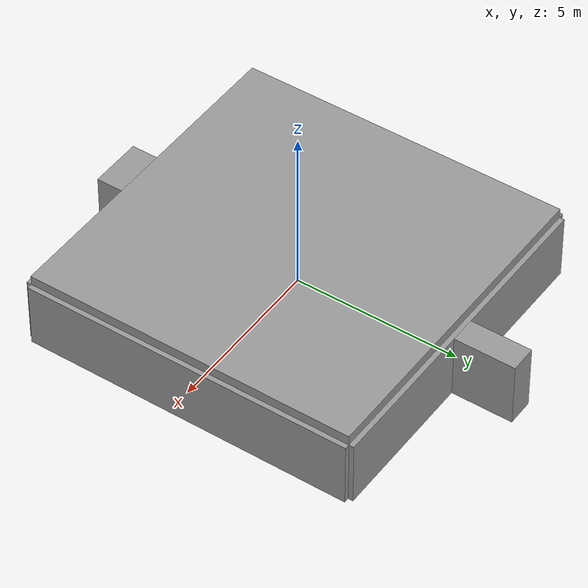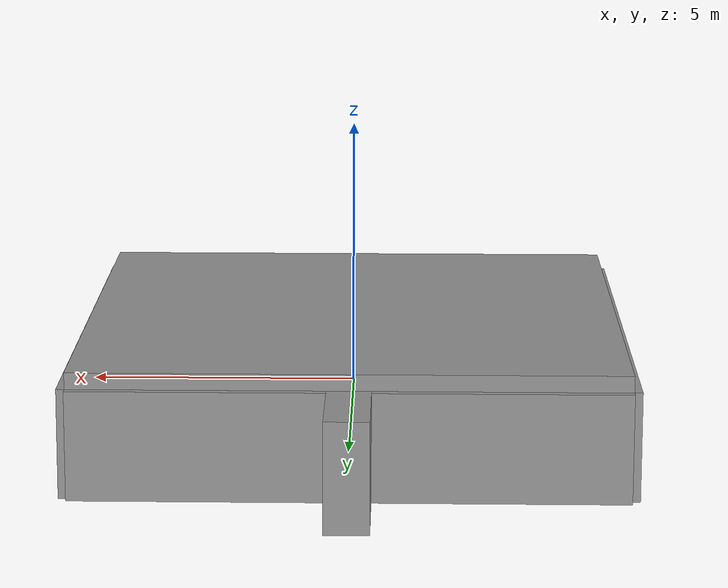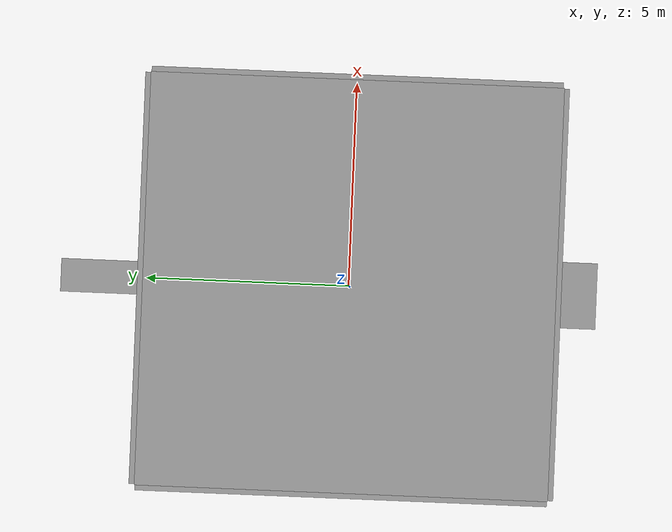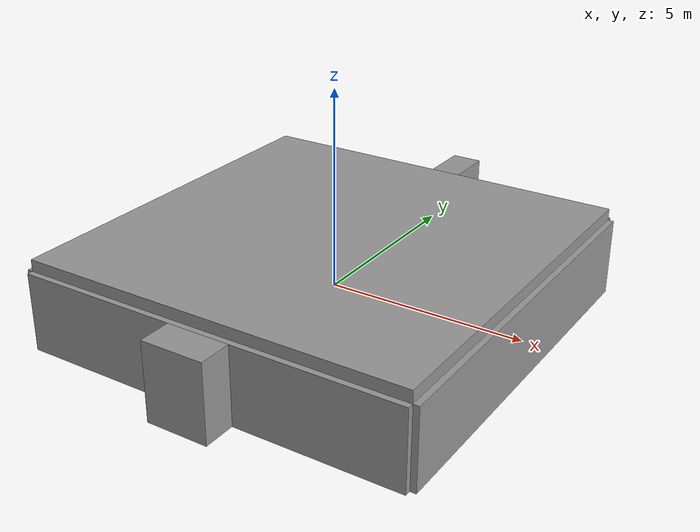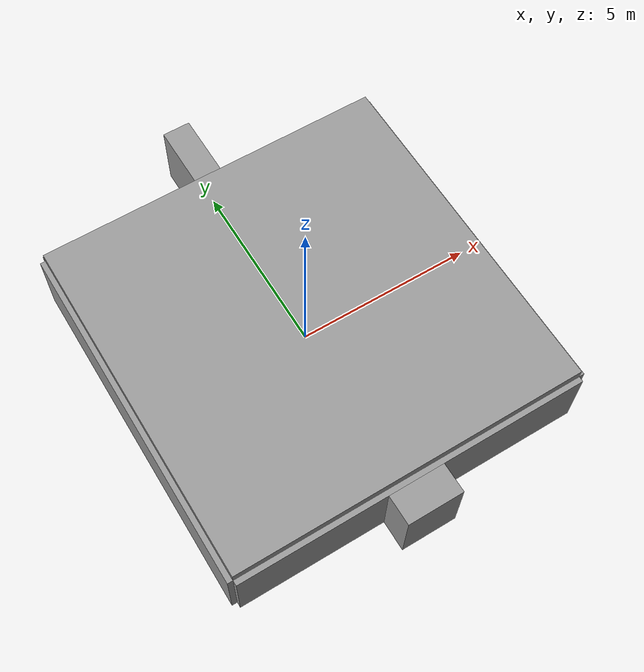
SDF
<?xml version='1.0'?>
<sdf version='1.7'>
  <model name='arena'>
    <link name='link_0'>
      <inertial>
        <mass>1</mass>
        <inertia>
          <ixx>0.166667</ixx>
          <ixy>0</ixy>
          <ixz>0</ixz>
          <iyy>0.166667</iyy>
          <iyz>0</iyz>
          <izz>0.166667</izz>
        </inertia>
        <pose>0 0 0 0 -0 0</pose>
      </inertial>
      <pose>0 0 0.1 0 -0 0</pose>
      <gravity>1</gravity>
      <self_collide>0</self_collide>
      <kinematic>0</kinematic>
      <enable_wind>0</enable_wind>
      <visual name='visual'>
        <pose>0 5 0 0 -0 0</pose>
        <geometry>
          <box>
            <size>10 0.3 2</size>
          </box>
        </geometry>
        <material>
          <lighting>1</lighting>
          <script>
            <uri>file://media/materials/scripts/gazebo.material</uri>
            <name>Gazebo/Grey</name>
          </script>
          <shader type='pixel'>
            <normal_map>__default__</normal_map>
          </shader>
          <ambient>0.3 0.3 0.3 1</ambient>
          <diffuse>0.7 0.7 0.7 1</diffuse>
          <specular>0.01 0.01 0.01 1</specular>
          <emissive>0 0 0 1</emissive>
        </material>
        <transparency>0</transparency>
        <cast_shadows>1</cast_shadows>
      </visual>
      <collision name='collision'>
        <laser_retro>1</laser_retro>
        <max_contacts>10</max_contacts>
        <pose>0 5 0 0 -0 0</pose>
        <geometry>
          <box>
            <size>10 0.3 2</size>
          </box>
        </geometry>
        <surface>
          <friction>
            <ode>
              <mu>1</mu>
              <mu2>1</mu2>
              <fdir1>0 0 0</fdir1>
              <slip1>0</slip1>
              <slip2>0</slip2>
            </ode>
            <torsional>
              <coefficient>1</coefficient>
              <patch_radius>0</patch_radius>
              <surface_radius>0</surface_radius>
              <use_patch_radius>1</use_patch_radius>
              <ode>
                <slip>0</slip>
              </ode>
            </torsional>
          </friction>
          <bounce>
            <restitution_coefficient>0</restitution_coefficient>
            <threshold>1e+06</threshold>
          </bounce>
          <contact>
            <collide_without_contact>0</collide_without_contact>
            <collide_without_contact_bitmask>1</collide_without_contact_bitmask>
            <collide_bitmask>1</collide_bitmask>
            <ode>
              <soft_cfm>0</soft_cfm>
              <soft_erp>0.2</soft_erp>
              <kp>1e+13</kp>
              <kd>1</kd>
              <max_vel>0.01</max_vel>
              <min_depth>0</min_depth>
            </ode>
            <bullet>
              <split_impulse>1</split_impulse>
              <split_impulse_penetration_threshold>-0.01</split_impulse_penetration_threshold>
              <soft_cfm>0</soft_cfm>
              <soft_erp>0.2</soft_erp>
              <kp>1e+13</kp>
              <kd>1</kd>
            </bullet>
          </contact>
        </surface>
      </collision>
    </link>
    <link name='link_0_clone'>
      <inertial>
        <mass>1</mass>
        <inertia>
          <ixx>0.166667</ixx>
          <ixy>0</ixy>
          <ixz>0</ixz>
          <iyy>0.166667</iyy>
          <iyz>0</iyz>
          <izz>0.166667</izz>
        </inertia>
        <pose>0 0 0 0 -0 0</pose>
      </inertial>
      <pose>0 0 0.1 0 -0 0</pose>
      <gravity>1</gravity>
      <self_collide>0</self_collide>
      <kinematic>0</kinematic>
      <enable_wind>0</enable_wind>
      <visual name='visual'>
        <pose>0 -5 0 0 -0 0</pose>
        <geometry>
          <box>
            <size>10 0.3 2</size>
          </box>
        </geometry>
        <material>
          <lighting>1</lighting>
          <script>
            <uri>file://media/materials/scripts/gazebo.material</uri>
            <name>Gazebo/Grey</name>
          </script>
          <shader type='pixel'>
            <normal_map>__default__</normal_map>
          </shader>
          <ambient>0.3 0.3 0.3 1</ambient>
          <diffuse>0.7 0.7 0.7 1</diffuse>
          <specular>0.01 0.01 0.01 1</specular>
          <emissive>0 0 0 1</emissive>
        </material>
        <transparency>0</transparency>
        <cast_shadows>1</cast_shadows>
      </visual>
      <collision name='collision'>
        <laser_retro>1</laser_retro>
        <max_contacts>10</max_contacts>
        <pose>0 -5 0 0 -0 0</pose>
        <geometry>
          <box>
            <size>10 0.3 2</size>
          </box>
        </geometry>
        <surface>
          <friction>
            <ode>
              <mu>1</mu>
              <mu2>1</mu2>
              <fdir1>0 0 0</fdir1>
              <slip1>0</slip1>
              <slip2>0</slip2>
            </ode>
            <torsional>
              <coefficient>1</coefficient>
              <patch_radius>0</patch_radius>
              <surface_radius>0</surface_radius>
              <use_patch_radius>1</use_patch_radius>
              <ode>
                <slip>0</slip>
              </ode>
            </torsional>
          </friction>
          <bounce>
            <restitution_coefficient>0</restitution_coefficient>
            <threshold>1e+06</threshold>
          </bounce>
          <contact>
            <collide_without_contact>0</collide_without_contact>
            <collide_without_contact_bitmask>1</collide_without_contact_bitmask>
            <collide_bitmask>1</collide_bitmask>
            <ode>
              <soft_cfm>0</soft_cfm>
              <soft_erp>0.2</soft_erp>
              <kp>1e+13</kp>
              <kd>1</kd>
              <max_vel>0.01</max_vel>
              <min_depth>0</min_depth>
            </ode>
            <bullet>
              <split_impulse>1</split_impulse>
              <split_impulse_penetration_threshold>-0.01</split_impulse_penetration_threshold>
              <soft_cfm>0</soft_cfm>
              <soft_erp>0.2</soft_erp>
              <kp>1e+13</kp>
              <kd>1</kd>
            </bullet>
          </contact>
        </surface>
      </collision>
    </link>
    <link name='link_0_clone_0'>
      <inertial>
        <mass>1</mass>
        <inertia>
          <ixx>0.166667</ixx>
          <ixy>0</ixy>
          <ixz>0</ixz>
          <iyy>0.166667</iyy>
          <iyz>0</iyz>
          <izz>0.166667</izz>
        </inertia>
        <pose>0 0 0 0 -0 0</pose>
      </inertial>
      <pose>0 0 0.1 0 -0 0</pose>
      <gravity>1</gravity>
      <self_collide>0</self_collide>
      <kinematic>0</kinematic>
      <enable_wind>0</enable_wind>
      <visual name='visual'>
        <pose>5 0 0 0 -0 0</pose>
        <geometry>
          <box>
            <size>0.3 10 2</size>
          </box>
        </geometry>
        <material>
          <lighting>1</lighting>
          <script>
            <uri>file://media/materials/scripts/gazebo.material</uri>
            <name>Gazebo/Grey</name>
          </script>
          <shader type='pixel'>
            <normal_map>__default__</normal_map>
          </shader>
          <ambient>0.3 0.3 0.3 1</ambient>
          <diffuse>0.7 0.7 0.7 1</diffuse>
          <specular>0.01 0.01 0.01 1</specular>
          <emissive>0 0 0 1</emissive>
        </material>
        <transparency>0</transparency>
        <cast_shadows>1</cast_shadows>
      </visual>
      <collision name='collision'>
        <laser_retro>1</laser_retro>
        <max_contacts>10</max_contacts>
        <pose>5 0 0 0 -0 0</pose>
        <geometry>
          <box>
            <size>0.3 10 2</size>
          </box>
        </geometry>
        <surface>
          <friction>
            <ode>
              <mu>1</mu>
              <mu2>1</mu2>
              <fdir1>0 0 0</fdir1>
              <slip1>0</slip1>
              <slip2>0</slip2>
            </ode>
            <torsional>
              <coefficient>1</coefficient>
              <patch_radius>0</patch_radius>
              <surface_radius>0</surface_radius>
              <use_patch_radius>1</use_patch_radius>
              <ode>
                <slip>0</slip>
              </ode>
            </torsional>
          </friction>
          <bounce>
            <restitution_coefficient>0</restitution_coefficient>
            <threshold>1e+06</threshold>
          </bounce>
          <contact>
            <collide_without_contact>0</collide_without_contact>
            <collide_without_contact_bitmask>1</collide_without_contact_bitmask>
            <collide_bitmask>1</collide_bitmask>
            <ode>
              <soft_cfm>0</soft_cfm>
              <soft_erp>0.2</soft_erp>
              <kp>1e+13</kp>
              <kd>1</kd>
              <max_vel>0.01</max_vel>
              <min_depth>0</min_depth>
            </ode>
            <bullet>
              <split_impulse>1</split_impulse>
              <split_impulse_penetration_threshold>-0.01</split_impulse_penetration_threshold>
              <soft_cfm>0</soft_cfm>
              <soft_erp>0.2</soft_erp>
              <kp>1e+13</kp>
              <kd>1</kd>
            </bullet>
          </contact>
        </surface>
      </collision>
    </link>
    <link name='link_0_clone_1'>
      <inertial>
        <mass>1</mass>
        <inertia>
          <ixx>0.166667</ixx>
          <ixy>0</ixy>
          <ixz>0</ixz>
          <iyy>0.166667</iyy>
          <iyz>0</iyz>
          <izz>0.166667</izz>
        </inertia>
        <pose>0 0 0 0 -0 0</pose>
      </inertial>
      <pose>0 0 0.1 0 -0 0</pose>
      <gravity>1</gravity>
      <self_collide>0</self_collide>
      <kinematic>0</kinematic>
      <enable_wind>0</enable_wind>
      <visual name='visual'>
        <pose>-5 0 0 0 -0 0</pose>
        <geometry>
          <box>
            <size>0.3 10 2</size>
          </box>
        </geometry>
        <material>
          <lighting>1</lighting>
          <script>
            <uri>file://media/materials/scripts/gazebo.material</uri>
            <name>Gazebo/Grey</name>
          </script>
          <shader type='pixel'>
            <normal_map>__default__</normal_map>
          </shader>
          <ambient>0.3 0.3 0.3 1</ambient>
          <diffuse>0.7 0.7 0.7 1</diffuse>
          <specular>0.01 0.01 0.01 1</specular>
          <emissive>0 0 0 1</emissive>
        </material>
        <transparency>0</transparency>
        <cast_shadows>1</cast_shadows>
      </visual>
      <collision name='collision'>
        <laser_retro>1</laser_retro>
        <max_contacts>10</max_contacts>
        <pose>-5 0 0 0 -0 0</pose>
        <geometry>
          <box>
            <size>0.3 10 2</size>
          </box>
        </geometry>
        <surface>
          <friction>
            <ode>
              <mu>1</mu>
              <mu2>1</mu2>
              <fdir1>0 0 0</fdir1>
              <slip1>0</slip1>
              <slip2>0</slip2>
            </ode>
            <torsional>
              <coefficient>1</coefficient>
              <patch_radius>0</patch_radius>
              <surface_radius>0</surface_radius>
              <use_patch_radius>1</use_patch_radius>
              <ode>
                <slip>0</slip>
              </ode>
            </torsional>
          </friction>
          <bounce>
            <restitution_coefficient>0</restitution_coefficient>
            <threshold>1e+06</threshold>
          </bounce>
          <contact>
            <collide_without_contact>0</collide_without_contact>
            <collide_without_contact_bitmask>1</collide_without_contact_bitmask>
            <collide_bitmask>1</collide_bitmask>
            <ode>
              <soft_cfm>0</soft_cfm>
              <soft_erp>0.2</soft_erp>
              <kp>1e+13</kp>
              <kd>1</kd>
              <max_vel>0.01</max_vel>
              <min_depth>0</min_depth>
            </ode>
            <bullet>
              <split_impulse>1</split_impulse>
              <split_impulse_penetration_threshold>-0.01</split_impulse_penetration_threshold>
              <soft_cfm>0</soft_cfm>
              <soft_erp>0.2</soft_erp>
              <kp>1e+13</kp>
              <kd>1</kd>
            </bullet>
          </contact>
        </surface>
      </collision>
    </link>
    <link name='link_1'>
      <inertial>
        <mass>1</mass>
        <inertia>
          <ixx>0.166667</ixx>
          <ixy>0</ixy>
          <ixz>0</ixz>
          <iyy>0.166667</iyy>
          <iyz>0</iyz>
          <izz>0.166667</izz>
        </inertia>
        <pose>0 0 0 0 -0 0</pose>
      </inertial>
      <pose>0 0 0.1 0 -0 0</pose>
      <gravity>1</gravity>
      <self_collide>0</self_collide>
      <kinematic>0</kinematic>
      <enable_wind>0</enable_wind>
      <visual name='visual'>
        <pose>0 5 0 0 -0 0</pose>
        <geometry>
          <box>
            <size>0.8 4 2</size>
          </box>
        </geometry>
        <material>
          <lighting>1</lighting>
          <script>
            <uri>file://media/materials/scripts/gazebo.material</uri>
            <name>Gazebo/Grey</name>
          </script>
          <shader type='pixel'>
            <normal_map>__default__</normal_map>
          </shader>
          <ambient>0.3 0.3 0.3 1</ambient>
          <diffuse>0.7 0.7 0.7 1</diffuse>
          <specular>0.01 0.01 0.01 1</specular>
          <emissive>0 0 0 1</emissive>
        </material>
        <transparency>0</transparency>
        <cast_shadows>1</cast_shadows>
      </visual>
      <collision name='collision'>
        <laser_retro>1</laser_retro>
        <max_contacts>10</max_contacts>
        <pose>0 5 0 0 -0 0</pose>
        <geometry>
          <box>
            <size>0.8 4 2</size>
          </box>
        </geometry>
        <surface>
          <friction>
            <ode>
              <mu>1</mu>
              <mu2>1</mu2>
              <fdir1>0 0 0</fdir1>
              <slip1>0</slip1>
              <slip2>0</slip2>
            </ode>
            <torsional>
              <coefficient>1</coefficient>
              <patch_radius>0</patch_radius>
              <surface_radius>0</surface_radius>
              <use_patch_radius>1</use_patch_radius>
              <ode>
                <slip>0</slip>
              </ode>
            </torsional>
          </friction>
          <bounce>
            <restitution_coefficient>0</restitution_coefficient>
            <threshold>1e+06</threshold>
          </bounce>
          <contact>
            <collide_without_contact>0</collide_without_contact>
            <collide_without_contact_bitmask>1</collide_without_contact_bitmask>
            <collide_bitmask>1</collide_bitmask>
            <ode>
              <soft_cfm>0</soft_cfm>
              <soft_erp>0.2</soft_erp>
              <kp>1e+13</kp>
              <kd>1</kd>
              <max_vel>0.01</max_vel>
              <min_depth>0</min_depth>
            </ode>
            <bullet>
              <split_impulse>1</split_impulse>
              <split_impulse_penetration_threshold>-0.01</split_impulse_penetration_threshold>
              <soft_cfm>0</soft_cfm>
              <soft_erp>0.2</soft_erp>
              <kp>1e+13</kp>
              <kd>1</kd>
            </bullet>
          </contact>
        </surface>
      </collision>
    </link>
    <link name='link_2'>
      <inertial>
        <mass>1</mass>
        <inertia>
          <ixx>0.166667</ixx>
          <ixy>0</ixy>
          <ixz>0</ixz>
          <iyy>0.166667</iyy>
          <iyz>0</iyz>
          <izz>0.166667</izz>
        </inertia>
        <pose>0 0 0 0 -0 0</pose>
      </inertial>
      <pose>0 0 0.1 0 -0 0</pose>
      <gravity>1</gravity>
      <self_collide>0</self_collide>
      <kinematic>0</kinematic>
      <enable_wind>0</enable_wind>
      <visual name='visual'>
        <pose>0 -5 0 0 -0 0</pose>
        <geometry>
          <box>
            <size>1.6 2 2</size>
          </box>
        </geometry>
        <material>
          <lighting>1</lighting>
          <script>
            <uri>file://media/materials/scripts/gazebo.material</uri>
            <name>Gazebo/Grey</name>
          </script>
          <shader type='pixel'>
            <normal_map>__default__</normal_map>
          </shader>
          <ambient>0.3 0.3 0.3 1</ambient>
          <diffuse>0.7 0.7 0.7 1</diffuse>
          <specular>0.01 0.01 0.01 1</specular>
          <emissive>0 0 0 1</emissive>
        </material>
        <transparency>0</transparency>
        <cast_shadows>1</cast_shadows>
      </visual>
      <collision name='collision'>
        <laser_retro>1</laser_retro>
        <max_contacts>10</max_contacts>
        <pose>0 -5 0 0 -0 0</pose>
        <geometry>
          <box>
            <size>1.6 2 2</size>
          </box>
        </geometry>
        <surface>
          <friction>
            <ode>
              <mu>1</mu>
              <mu2>1</mu2>
              <fdir1>0 0 0</fdir1>
              <slip1>0</slip1>
              <slip2>0</slip2>
            </ode>
            <torsional>
              <coefficient>1</coefficient>
              <patch_radius>0</patch_radius>
              <surface_radius>0</surface_radius>
              <use_patch_radius>1</use_patch_radius>
              <ode>
                <slip>0</slip>
              </ode>
            </torsional>
          </friction>
          <bounce>
            <restitution_coefficient>0</restitution_coefficient>
            <threshold>1e+06</threshold>
          </bounce>
          <contact>
            <collide_without_contact>0</collide_without_contact>
            <collide_without_contact_bitmask>1</collide_without_contact_bitmask>
            <collide_bitmask>1</collide_bitmask>
            <ode>
              <soft_cfm>0</soft_cfm>
              <soft_erp>0.2</soft_erp>
              <kp>1e+13</kp>
              <kd>1</kd>
              <max_vel>0.01</max_vel>
              <min_depth>0</min_depth>
            </ode>
            <bullet>
              <split_impulse>1</split_impulse>
              <split_impulse_penetration_threshold>-0.01</split_impulse_penetration_threshold>
              <soft_cfm>0</soft_cfm>
              <soft_erp>0.2</soft_erp>
              <kp>1e+13</kp>
              <kd>1</kd>
            </bullet>
          </contact>
        </surface>
      </collision>
    </link>
    <link name='link_0_clone_2'>
      <inertial>
        <mass>1</mass>
        <inertia>
          <ixx>0.166667</ixx>
          <ixy>0</ixy>
          <ixz>0</ixz>
          <iyy>0.166667</iyy>
          <iyz>0</iyz>
          <izz>0.166667</izz>
        </inertia>
        <pose>0 0 0 0 -0 0</pose>
      </inertial>
      <pose>0 0 0.1 0 -0 0</pose>
      <gravity>1</gravity>
      <self_collide>0</self_collide>
      <kinematic>0</kinematic>
      <enable_wind>0</enable_wind>
      <visual name='visual'>
        <pose>0 0 1.15 0 -0 0</pose>
        <geometry>
          <box>
            <size>10 10 0.3</size>
          </box>
        </geometry>
        <material>
          <lighting>1</lighting>
          <script>
            <uri>file://media/materials/scripts/gazebo.material</uri>
            <name>Gazebo/Grey</name>
          </script>
          <shader type='pixel'>
            <normal_map>__default__</normal_map>
          </shader>
          <ambient>0.3 0.3 0.3 1</ambient>
          <diffuse>0.7 0.7 0.7 1</diffuse>
          <specular>0.01 0.01 0.01 1</specular>
          <emissive>0 0 0 1</emissive>
        </material>
        <transparency>0</transparency>
        <cast_shadows>1</cast_shadows>
      </visual>
      <collision name='collision'>
        <laser_retro>1</laser_retro>
        <max_contacts>10</max_contacts>
        <pose>0 0 1.15 0 -0 0</pose>
        <geometry>
          <box>
            <size>10 10 0.3</size>
          </box>
        </geometry>
        <surface>
          <friction>
            <ode>
              <mu>1</mu>
              <mu2>1</mu2>
              <fdir1>0 0 0</fdir1>
              <slip1>0</slip1>
              <slip2>0</slip2>
            </ode>
            <torsional>
              <coefficient>1</coefficient>
              <patch_radius>0</patch_radius>
              <surface_radius>0</surface_radius>
              <use_patch_radius>1</use_patch_radius>
              <ode>
                <slip>0</slip>
              </ode>
            </torsional>
          </friction>
          <bounce>
            <restitution_coefficient>0</restitution_coefficient>
            <threshold>1e+06</threshold>
          </bounce>
          <contact>
            <collide_without_contact>0</collide_without_contact>
            <collide_without_contact_bitmask>1</collide_without_contact_bitmask>
            <collide_bitmask>1</collide_bitmask>
            <ode>
              <soft_cfm>0</soft_cfm>
              <soft_erp>0.2</soft_erp>
              <kp>1e+13</kp>
              <kd>1</kd>
              <max_vel>0.01</max_vel>
              <min_depth>0</min_depth>
            </ode>
            <bullet>
              <split_impulse>1</split_impulse>
              <split_impulse_penetration_threshold>-0.01</split_impulse_penetration_threshold>
              <soft_cfm>0</soft_cfm>
              <soft_erp>0.2</soft_erp>
              <kp>1e+13</kp>
              <kd>1</kd>
            </bullet>
          </contact>
        </surface>
      </collision>
    </link>
    <joint name='link_0_clone_2_JOINT_0' type='fixed'>
      <parent>link_0_clone_2</parent>
      <child>link_0</child>
      <pose>0 0 0 0 -0 0</pose>
      <physics>
        <ode>
          <limit>
            <cfm>0</cfm>
            <erp>0.2</erp>
          </limit>
          <suspension>
            <cfm>0</cfm>
            <erp>0.2</erp>
          </suspension>
        </ode>
      </physics>
    </joint>
    <joint name='link_0_clone_2_JOINT_1' type='fixed'>
      <parent>link_0_clone_2</parent>
      <child>link_0_clone</child>
      <pose>0 0 0 0 -0 0</pose>
      <physics>
        <ode>
          <limit>
            <cfm>0</cfm>
            <erp>0.2</erp>
          </limit>
          <suspension>
            <cfm>0</cfm>
            <erp>0.2</erp>
          </suspension>
        </ode>
      </physics>
    </joint>
    <joint name='link_0_clone_2_JOINT_2' type='fixed'>
      <parent>link_0_clone_2</parent>
      <child>link_0_clone_0</child>
      <pose>0 0 0 0 -0 0</pose>
      <physics>
        <ode>
          <limit>
            <cfm>0</cfm>
            <erp>0.2</erp>
          </limit>
          <suspension>
            <cfm>0</cfm>
            <erp>0.2</erp>
          </suspension>
        </ode>
      </physics>
    </joint>
    <joint name='link_0_clone_2_JOINT_3' type='fixed'>
      <parent>link_0_clone_2</parent>
      <child>link_0_clone_1</child>
      <pose>0 0 0 0 -0 0</pose>
      <physics>
        <ode>
          <limit>
            <cfm>0</cfm>
            <erp>0.2</erp>
          </limit>
          <suspension>
            <cfm>0</cfm>
            <erp>0.2</erp>
          </suspension>
        </ode>
      </physics>
    </joint>
    <joint name='link_0_clone_2_JOINT_4' type='fixed'>
      <parent>link_0_clone_2</parent>
      <child>link_1</child>
      <pose>0 0 0 0 -0 0</pose>
      <physics>
        <ode>
          <limit>
            <cfm>0</cfm>
            <erp>0.2</erp>
          </limit>
          <suspension>
            <cfm>0</cfm>
            <erp>0.2</erp>
          </suspension>
        </ode>
      </physics>
    </joint>
    <joint name='link_0_clone_2_JOINT_5' type='fixed'>
      <parent>link_0_clone_2</parent>
      <child>link_2</child>
      <pose>0 0 0 0 -0 0</pose>
      <physics>
        <ode>
          <limit>
            <cfm>0</cfm>
            <erp>0.2</erp>
          </limit>
          <suspension>
            <cfm>0</cfm>
            <erp>0.2</erp>
          </suspension>
        </ode>
      </physics>
    </joint>
    <static>0</static>
    <allow_auto_disable>1</allow_auto_disable>
  </model>
</sdf>
